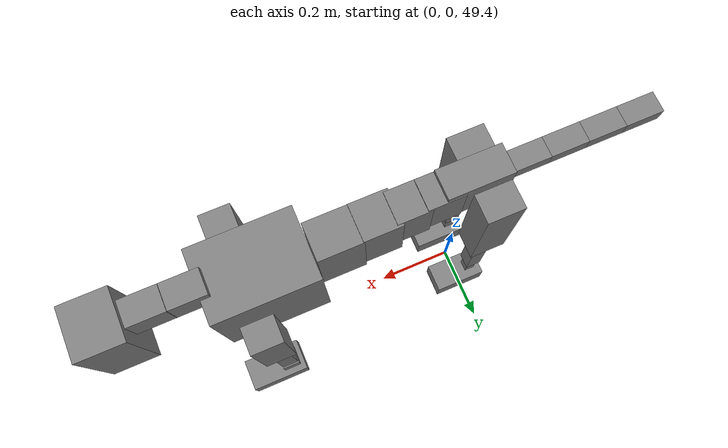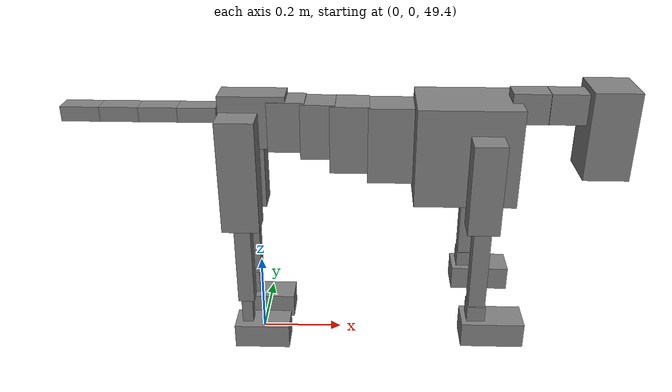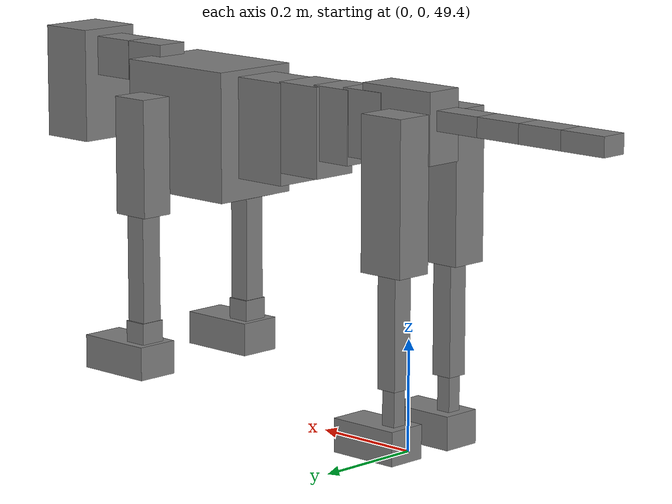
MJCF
<mujoco model="dog">

    <default>
        <joint armature="0.02" stiffness="1" damping="0.2" limited="true"/>
        <geom condim="3" friction="1 0.05 0.05" margin="0.01"/>
        <motor ctrllimited="true" ctrlrange="-1.0 1.0" forcelimited="true" gear="50"/>
    </default>

    <compiler inertiafromgeom="true" angle="radian"/>

    <option timestep="0.016" iterations="50" tolerance="1e-10" solver="Newton" jacobian="dense" cone="pyramidal"/>

    <size nconmax="20000" njmax="60000" nstack="5000000"/>
    <visual>
        <map force="0.1" zfar="30"/>
        <rgba haze="0.15 0.25 0.35 1"/>
        <quality shadowsize="2048"/>
        <global offwidth="800" offheight="800"/>
    </visual>

    <asset>
        <texture type="skybox" builtin="gradient" rgb1="0.3 0.5 0.7" rgb2="0 0 0" width="512" height="512"/>
        <texture name="texplane" type="2d" builtin="checker" rgb1=".2 .3 .4" rgb2=".1 0.15 0.2" width="512" height="512"
                 mark="cross" markrgb=".8 .8 .8"/>
        <texture name="texgeom" type="cube" builtin="flat" mark="cross" width="127" height="1278" rgb1="0.8 0.6 0.4"
                 rgb2="0.8 0.6 0.4" markrgb="1 1 1" random="0.01"/>

        <material name="matplane" reflectance="0.3" texture="texplane" texrepeat="1 1" texuniform="true"/>
        <material name="matgeom" texture="texgeom" texuniform="true" rgba="0.8 0.6 .4 1"/>
    </asset>

    <worldbody>
        <geom name="floor" pos="0 0 0" size="0 0 .25" type="plane" material="matplane" condim="3"/>

        <light directional="false" diffuse=".2 .2 .2" specular="0 0 0" pos="0 0 5" dir="0 0 -1" castshadow="false"/>
        <light mode="targetbodycom" target="torso" directional="false" diffuse=".8 .8 .8" specular="0.3 0.3 0.3"
               pos="0 0 4.0" dir="0 0 -1"/>

        <body name="root" pos="0 0 50">
            <freejoint name="root_1"/>
            <geom type="box" pos="0 0 -0.02" size="0.0774  0.0358  0.063" density="2030"/>

            <body name="spine1" pos="0.054 0 0">
                <joint name="spine1_y" axis="0 1 0" range="0 0.7" limited="true"/>
                <geom type="box" pos="0.02375 0 -0.03" size="0.04375  0.0375  0.05985" density="2030"/>

                <body name="spine2" pos="0.0612 0 0">
                    <joint name="spine2_y" axis="0 1 0" range="-0.15 0.15" limited="true"/>
                    <geom type="box" pos="0.03555  0  -0.04" size="0.04055  0.039  0.06615" density="2030"/>

                    <body name="spine3" pos="0.0730 0 0">
                        <joint name="spine3_y" axis="0 1 0" range="-0.15 0.15" limited="true"/>
                        <geom type="box" pos="0.03555  0  -0.057" size="0.04555  0.0445  0.081" density="2030"/>

                        <body name="spine4" pos="0.0780 0 0">
                            <joint name="spine4_y" axis="0 1 0" range="-0.15 0.15" limited="true"/>
                            <geom type="box" pos="0.05265  0  -0.07" size="0.05265  0.045  0.09135" density="2030"/>

                            <body name="torso" pos="0.1082 0 0">
                                <joint name="torso_y" axis="0 1 0" range="-0.15 0.15" limited="true"/>
                                <geom type="box" pos="0.11925  0  -0.085" size="0.11925  0.085  0.11745"
                                      density="2030"/>

                                <body name="neck1" pos="0.2160  0   0.0180">
                                    <joint name="neck1_y" axis="0 1 0" range="-1.2  -1" limited="true"/>
                                    <geom type="box" pos="0.0423  0  0" size="0.0423  0.03  0.036" density="2325"/>

                                    <body name="neck2" pos="0.0853  0  0">
                                        <joint name="neck2_y" axis="0 1 0" range="0.1  0" limited="true"/>
                                        <geom type="box" pos="0.0423  0  0" size="0.0423  0.03  0.036" density="2325"/>

                                        <body name="head" pos="0.0853  0  0">
                                            <joint name="head_y" axis="0 1 0" range="-0.3  -0.2" limited="true"/>
                                            <geom type="box" pos="0.0531  0  -0.055" size="0.0531  0.06  0.1044"
                                                  density="4030"/>

                                        </body>
                                    </body>
                                </body>

                                <body name="front_shoulder" pos="0.156  0   -0.0480">
                                    <joint name="front_shoulder_y" axis="0 1 0" range="-1 1.5" limited="true"/>
                                    <geom type="box" pos="0 0.13 -0.0804" size="0.0366  0.0313  0.1071" density="1158"/>
                                    <geom type="box" pos="0 -0.13 -0.0804" size="0.0366  0.0313  0.1071"
                                          density="1158"/>

                                    <body name="front_elbow" pos="0  0  -0.1608">
                                        <joint name="front_elbow_y" axis="0 1 0" range="-2 0" limited="true"/>
                                        <geom type="box" pos="0 0.13 -0.1182" size="0.0200  0.0205  0.1182"
                                              density="1081"/>
                                        <geom type="box" pos="0 -0.13 -0.1182" size="0.0200  0.0205  0.1182"
                                              density="1081"/>

                                        <body name="front_wrist" pos="0  0  -0.2364">
                                            <joint name="front_wrist_y" axis="0 1 0" range="-0.2 0" limited="true"/>
                                            <geom type="box" pos="0 0.13 -0.0205" size="0.0218  0.0242  0.0337"
                                                  density="1664"/>
                                            <geom type="box" pos="0 -0.13 -0.0205" size="0.0218  0.0242  0.0337"
                                                  density="1664"/>

                                            <body name="front_finger_end" pos="0  0  -0.0410">
                                                <joint name="front_finger_y" axis="0 1 0" range="-0.4 1"
                                                       limited="true"/>
                                                <geom type="box" pos="0.0404  0.13  -0.0157"
                                                      size="0.0741  0.0404  0.0307" density="1515"/>
                                                <geom type="box" pos="0.0404  -0.13  -0.0157"
                                                      size="0.0741  0.0404  0.0307" density="1515"/>

                                            </body>

                                        </body>
                                    </body>
                                </body>

                            </body>
                        </body>
                    </body>
                </body>
            </body>

            <body name="back_hip" pos="-0.03 0 -0.018">
                <joint name="back_hip_y" axis="0 1 0" range="-1.5 0.3" limited="true"/>
                <geom type="box" pos="0 0.07 -0.1135" size="0.0447  0.0351  0.1363" density="1154"/>
                <geom type="box" pos="0 -0.07 -0.1135" size="0.0447  0.0351  0.1363" density="1154"/>

                <body name="back_knee" pos="0  0  -0.2270">
                    <joint name="back_knee_y" axis="0 1 0" range="0 2.8" limited="true"/>
                    <geom type="box" pos="0 0.07 -0.1046" size="0.0197  0.0194  0.1202" density="1227"/>
                    <geom type="box" pos="0 -0.07 -0.1046" size="0.0197  0.0194  0.1202" density="1227"/>

                    <body name="back_ankle" pos="0  0  -0.2092">
                        <joint name="back_ankle_y" axis="0 1 0" range="-2.2 0" limited="true"/>
                        <geom type="box" pos="0 0.07 -0.0472" size="0.0135  0.0135  0.0585" density="1284"/>
                        <geom type="box" pos="0 -0.07 -0.0472" size="0.0135  0.0135  0.0585" density="1284"/>

                        <body name="back_toe_end" pos="0  0  -0.0944">
                            <joint name="back_toe_y" axis="0 1 0" range="-0.4 1" limited="true"/>
                            <geom type="box" pos="0.0371  0.07  -0.0154" size="0.0681  0.0371  0.0304" density="1515"/>
                            <geom type="box" pos="0.0371  -0.07  -0.0154" size="0.0681  0.0371  0.0304" density="1515"/>

                        </body>
                    </body>
                </body>
            </body>

            <body name="tail1" pos="-0.074 0 -0.006">
                <joint name="tail1_y" axis="0 1 0" range="-0.2 0.2" limited="true"/>
                <geom type="box" pos="-0.0536  0  0" size="0.045  0.025  0.0175" density="1587"/>

                <body name="tail2" pos="-0.09 0 0">
                    <joint name="tail2_y" axis="0 1 0" range="-0.2 0.2" limited="true"/>
                    <geom type="box" pos="-0.0536  0  0" size="0.045  0.025  0.0175" density="1587"/>

                    <body name="tail3" pos="-0.09 0 0">
                        <joint name="tail3_y" axis="0 1 0" range="-0.2 0.2" limited="true"/>
                        <geom type="box" pos="-0.0536  0  0" size="0.045  0.025  0.0175" density="1587"/>

                        <body name="tail4" pos="-0.09 0 0">
                            <joint name="tail4_y" axis="0 1 0" range="-0.2 0.2" limited="true"/>
                            <geom type="box" pos="-0.0536  0  0" size="0.045  0.025  0.0175" density="1587"/>

                        </body>
                    </body>
                </body>
            </body>
        </body>
    </worldbody>

    <actuator>
        <motor joint="spine1_y" forcerange="-150 150     "/>
        <motor joint="spine2_y" forcerange="-150 150     "/>
        <motor joint="spine3_y" forcerange="-150 150     "/>
        <motor joint="spine4_y" forcerange="-150 150     "/>
        <motor joint="torso_y" forcerange="-150 150     "/>
        <motor joint="neck1_y" forcerange="-100 100       "/>
        <motor joint="neck2_y" forcerange="-100 100       "/>
        <motor joint="head_y" forcerange="-150 150       "/>
        <motor joint="front_shoulder_y" forcerange="-116.90 191.73"/>
        <motor joint="front_elbow_y" forcerange="-145.40 103.57"/>
        <motor joint="front_wrist_y" forcerange="-103.61 89.94"/>
        <motor joint="front_finger_y" forcerange="-84.18 91.24"/>
        <motor joint="back_hip_y" forcerange="-279.86 387.91"/>
        <motor joint="back_knee_y" forcerange="-247.87 234.14"/>
        <motor joint="back_angle_y" forcerange="-53.19 62.85"/>
        <motor joint="back_toe_y" forcerange="-77.49 139.54"/>
        <motor joint="tail1_y" forcerange="-50 50     "/>
        <motor joint="tail2_y" forcerange="-50 50     "/>
        <motor joint="tail3_y" forcerange="-50 50     "/>
        <motor joint="tail4_y" forcerange="-50 50     "/>
    </actuator>
</mujoco>
